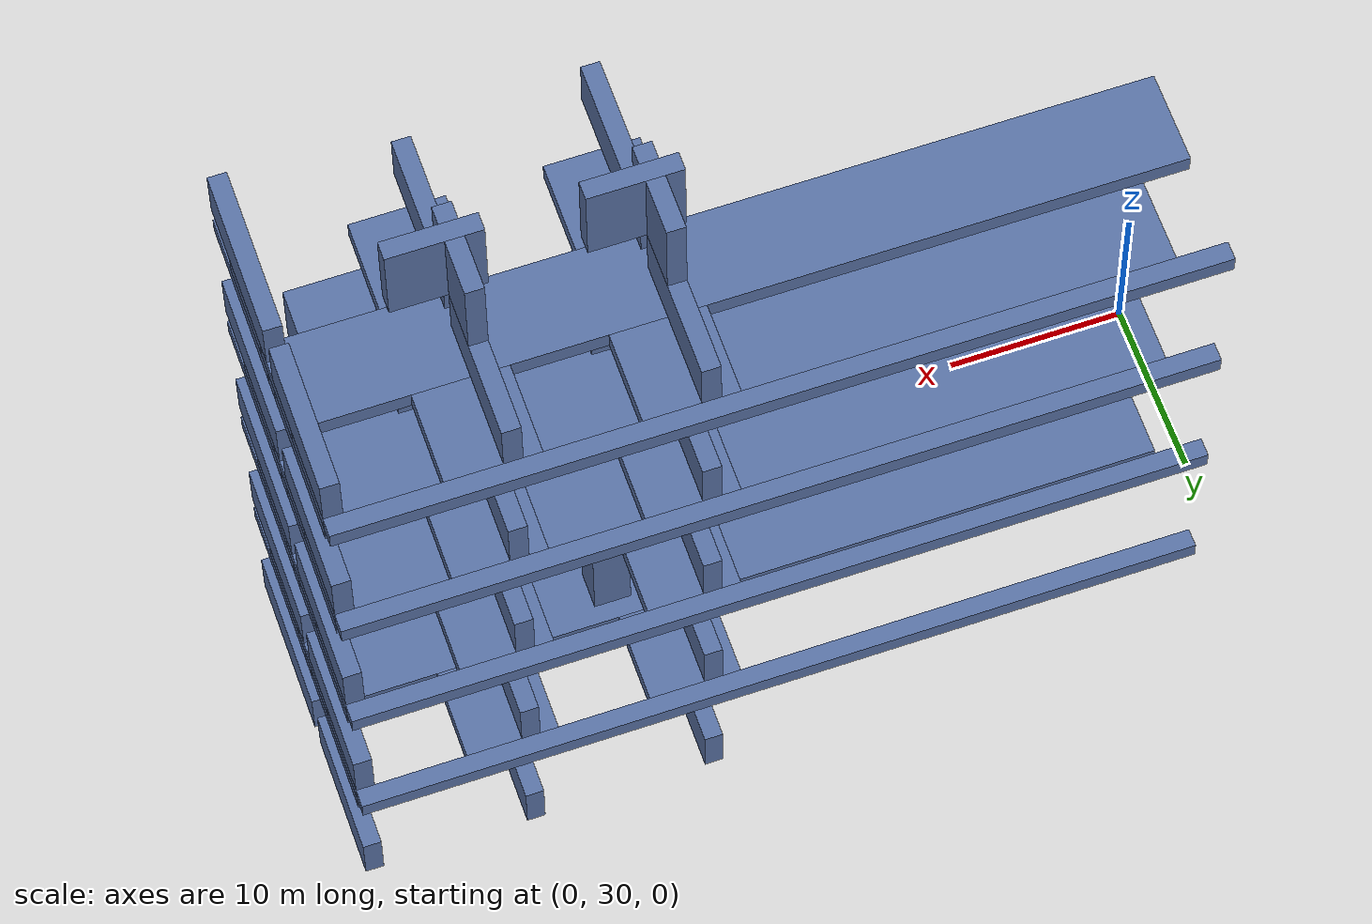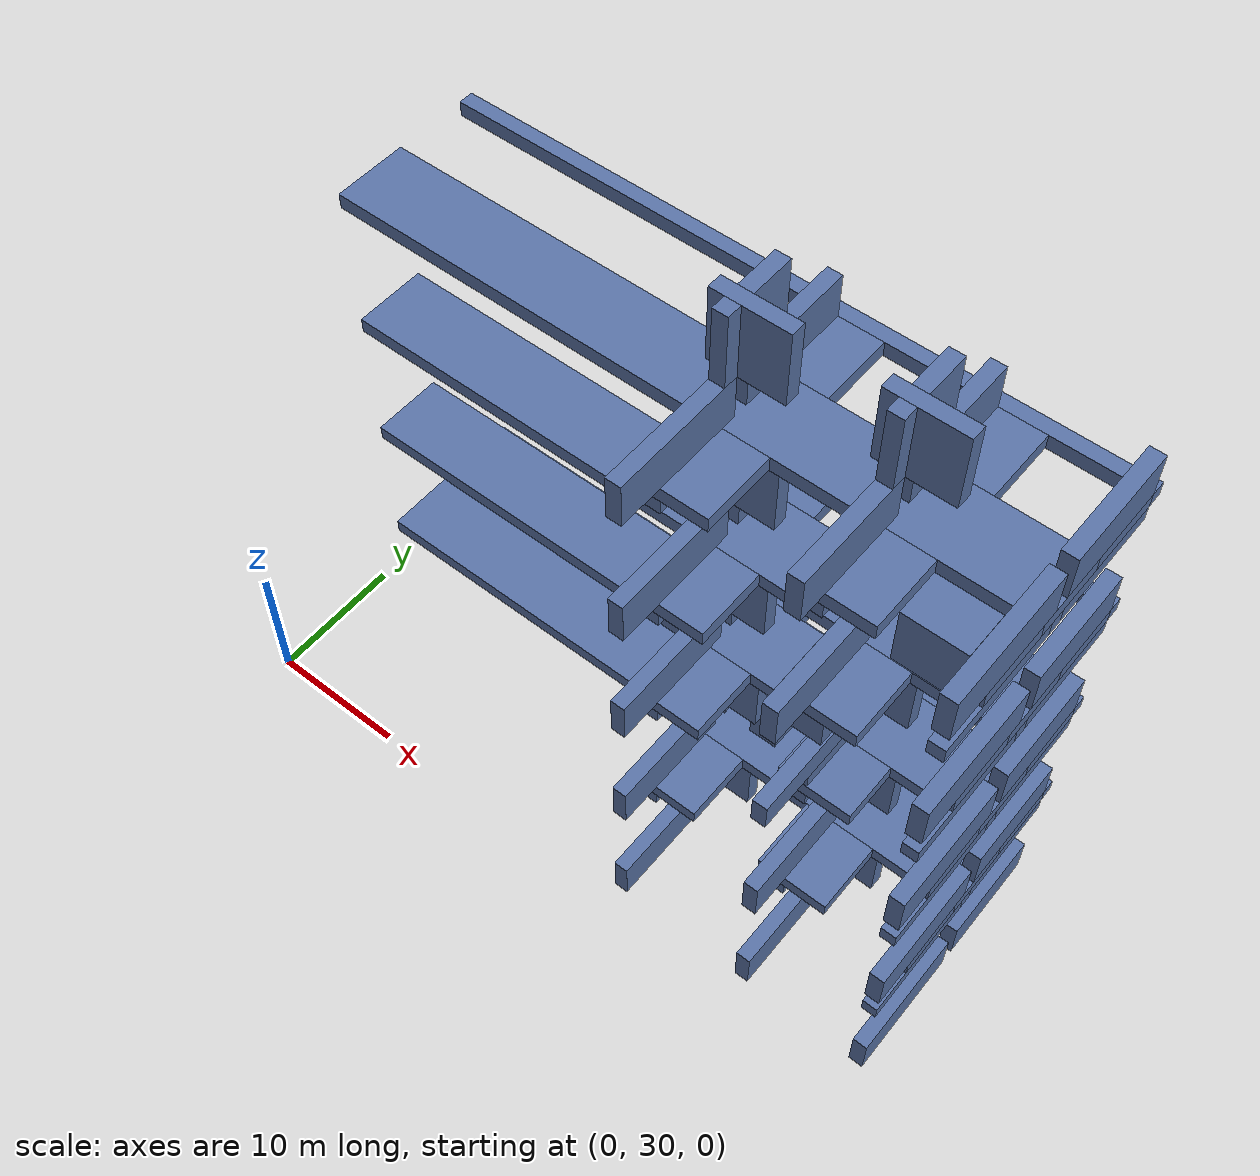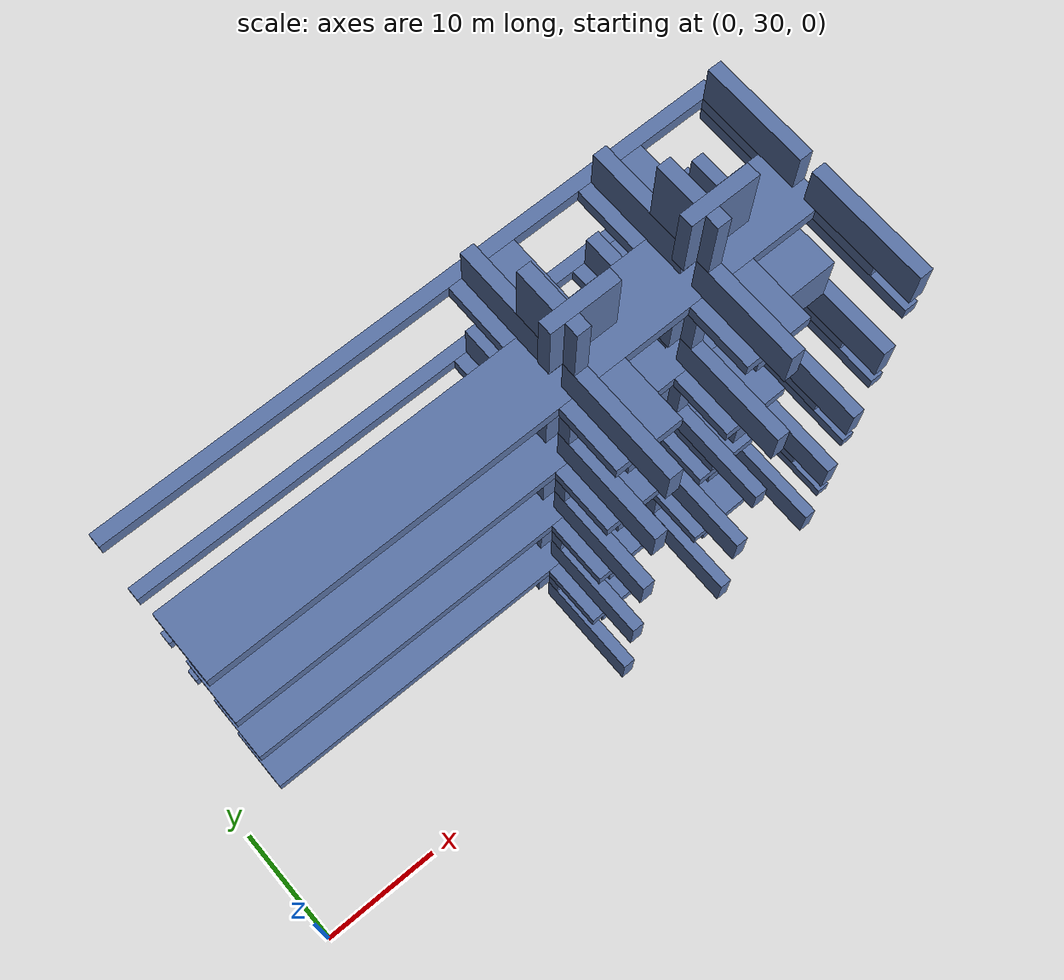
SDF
<sdf version="1.7">
 <world name="default">
  <model name="racer_env">
   <static>1</static>
   <link name="b84">
    <pose>27.000 41.500 10.500 0 0 0</pose>
    <collision name="c"><geometry><box><size>46.000 5.000 1.000</size></box></geometry></collision>
    <visual name="v">
     <geometry><box><size>46.000 5.000 1.000</size></box></geometry>
     <material><ambient>0.30 0.38 0.55 1</ambient><diffuse>0.35 0.45 0.65 1</diffuse></material>
    </visual>
   </link>
   <link name="b85">
    <pose>27.000 41.500 20.500 0 0 0</pose>
    <collision name="c"><geometry><box><size>46.000 5.000 1.000</size></box></geometry></collision>
    <visual name="v">
     <geometry><box><size>46.000 5.000 1.000</size></box></geometry>
     <material><ambient>0.30 0.38 0.55 1</ambient><diffuse>0.35 0.45 0.65 1</diffuse></material>
    </visual>
   </link>
   <link name="b86">
    <pose>27.000 41.500 30.500 0 0 0</pose>
    <collision name="c"><geometry><box><size>46.000 5.000 1.000</size></box></geometry></collision>
    <visual name="v">
     <geometry><box><size>46.000 5.000 1.000</size></box></geometry>
     <material><ambient>0.30 0.38 0.55 1</ambient><diffuse>0.35 0.45 0.65 1</diffuse></material>
    </visual>
   </link>
   <link name="b87">
    <pose>27.000 41.500 40.500 0 0 0</pose>
    <collision name="c"><geometry><box><size>46.000 5.000 1.000</size></box></geometry></collision>
    <visual name="v">
     <geometry><box><size>46.000 5.000 1.000</size></box></geometry>
     <material><ambient>0.30 0.38 0.55 1</ambient><diffuse>0.35 0.45 0.65 1</diffuse></material>
    </visual>
   </link>
   <link name="b88">
    <pose>27.000 40.500 9.500 0 0 0</pose>
    <collision name="c"><geometry><box><size>46.000 1.000 1.000</size></box></geometry></collision>
    <visual name="v">
     <geometry><box><size>46.000 1.000 1.000</size></box></geometry>
     <material><ambient>0.30 0.38 0.55 1</ambient><diffuse>0.35 0.45 0.65 1</diffuse></material>
    </visual>
   </link>
   <link name="b89">
    <pose>27.000 40.500 19.500 0 0 0</pose>
    <collision name="c"><geometry><box><size>46.000 1.000 1.000</size></box></geometry></collision>
    <visual name="v">
     <geometry><box><size>46.000 1.000 1.000</size></box></geometry>
     <material><ambient>0.30 0.38 0.55 1</ambient><diffuse>0.35 0.45 0.65 1</diffuse></material>
    </visual>
   </link>
   <link name="b90">
    <pose>27.000 40.500 29.500 0 0 0</pose>
    <collision name="c"><geometry><box><size>46.000 1.000 1.000</size></box></geometry></collision>
    <visual name="v">
     <geometry><box><size>46.000 1.000 1.000</size></box></geometry>
     <material><ambient>0.30 0.38 0.55 1</ambient><diffuse>0.35 0.45 0.65 1</diffuse></material>
    </visual>
   </link>
   <link name="b91">
    <pose>27.000 40.500 39.500 0 0 0</pose>
    <collision name="c"><geometry><box><size>46.000 1.000 1.000</size></box></geometry></collision>
    <visual name="v">
     <geometry><box><size>46.000 1.000 1.000</size></box></geometry>
     <material><ambient>0.30 0.38 0.55 1</ambient><diffuse>0.35 0.45 0.65 1</diffuse></material>
    </visual>
   </link>
   <link name="b92">
    <pose>27.000 49.500 10.500 0 0 0</pose>
    <collision name="c"><geometry><box><size>46.000 1.000 1.000</size></box></geometry></collision>
    <visual name="v">
     <geometry><box><size>46.000 1.000 1.000</size></box></geometry>
     <material><ambient>0.30 0.38 0.55 1</ambient><diffuse>0.35 0.45 0.65 1</diffuse></material>
    </visual>
   </link>
   <link name="b93">
    <pose>27.000 49.500 20.500 0 0 0</pose>
    <collision name="c"><geometry><box><size>46.000 1.000 1.000</size></box></geometry></collision>
    <visual name="v">
     <geometry><box><size>46.000 1.000 1.000</size></box></geometry>
     <material><ambient>0.30 0.38 0.55 1</ambient><diffuse>0.35 0.45 0.65 1</diffuse></material>
    </visual>
   </link>
   <link name="b94">
    <pose>27.000 49.500 30.500 0 0 0</pose>
    <collision name="c"><geometry><box><size>46.000 1.000 1.000</size></box></geometry></collision>
    <visual name="v">
     <geometry><box><size>46.000 1.000 1.000</size></box></geometry>
     <material><ambient>0.30 0.38 0.55 1</ambient><diffuse>0.35 0.45 0.65 1</diffuse></material>
    </visual>
   </link>
   <link name="b95">
    <pose>27.000 49.500 40.500 0 0 0</pose>
    <collision name="c"><geometry><box><size>46.000 1.000 1.000</size></box></geometry></collision>
    <visual name="v">
     <geometry><box><size>46.000 1.000 1.000</size></box></geometry>
     <material><ambient>0.30 0.38 0.55 1</ambient><diffuse>0.35 0.45 0.65 1</diffuse></material>
    </visual>
   </link>
   <link name="b419">
    <pose>31.500 36.500 10.500 0 0 0</pose>
    <collision name="c"><geometry><box><size>5.000 5.000 1.000</size></box></geometry></collision>
    <visual name="v">
     <geometry><box><size>5.000 5.000 1.000</size></box></geometry>
     <material><ambient>0.30 0.38 0.55 1</ambient><diffuse>0.35 0.45 0.65 1</diffuse></material>
    </visual>
   </link>
   <link name="b420">
    <pose>31.500 36.500 20.500 0 0 0</pose>
    <collision name="c"><geometry><box><size>5.000 5.000 1.000</size></box></geometry></collision>
    <visual name="v">
     <geometry><box><size>5.000 5.000 1.000</size></box></geometry>
     <material><ambient>0.30 0.38 0.55 1</ambient><diffuse>0.35 0.45 0.65 1</diffuse></material>
    </visual>
   </link>
   <link name="b421">
    <pose>31.500 36.500 30.500 0 0 0</pose>
    <collision name="c"><geometry><box><size>5.000 5.000 1.000</size></box></geometry></collision>
    <visual name="v">
     <geometry><box><size>5.000 5.000 1.000</size></box></geometry>
     <material><ambient>0.30 0.38 0.55 1</ambient><diffuse>0.35 0.45 0.65 1</diffuse></material>
    </visual>
   </link>
   <link name="b422">
    <pose>31.500 36.500 40.500 0 0 0</pose>
    <collision name="c"><geometry><box><size>5.000 5.000 1.000</size></box></geometry></collision>
    <visual name="v">
     <geometry><box><size>5.000 5.000 1.000</size></box></geometry>
     <material><ambient>0.30 0.38 0.55 1</ambient><diffuse>0.35 0.45 0.65 1</diffuse></material>
    </visual>
   </link>
   <link name="b423">
    <pose>31.500 40.500 6.500 0 0 0</pose>
    <collision name="c"><geometry><box><size>5.000 1.000 5.000</size></box></geometry></collision>
    <visual name="v">
     <geometry><box><size>5.000 1.000 5.000</size></box></geometry>
     <material><ambient>0.30 0.38 0.55 1</ambient><diffuse>0.35 0.45 0.65 1</diffuse></material>
    </visual>
   </link>
   <link name="b424">
    <pose>31.500 40.500 16.500 0 0 0</pose>
    <collision name="c"><geometry><box><size>5.000 1.000 5.000</size></box></geometry></collision>
    <visual name="v">
     <geometry><box><size>5.000 1.000 5.000</size></box></geometry>
     <material><ambient>0.30 0.38 0.55 1</ambient><diffuse>0.35 0.45 0.65 1</diffuse></material>
    </visual>
   </link>
   <link name="b425">
    <pose>31.500 40.500 26.500 0 0 0</pose>
    <collision name="c"><geometry><box><size>5.000 1.000 5.000</size></box></geometry></collision>
    <visual name="v">
     <geometry><box><size>5.000 1.000 5.000</size></box></geometry>
     <material><ambient>0.30 0.38 0.55 1</ambient><diffuse>0.35 0.45 0.65 1</diffuse></material>
    </visual>
   </link>
   <link name="b426">
    <pose>31.500 40.500 36.500 0 0 0</pose>
    <collision name="c"><geometry><box><size>5.000 1.000 5.000</size></box></geometry></collision>
    <visual name="v">
     <geometry><box><size>5.000 1.000 5.000</size></box></geometry>
     <material><ambient>0.30 0.38 0.55 1</ambient><diffuse>0.35 0.45 0.65 1</diffuse></material>
    </visual>
   </link>
   <link name="b427">
    <pose>31.500 40.500 46.500 0 0 0</pose>
    <collision name="c"><geometry><box><size>5.000 1.000 5.000</size></box></geometry></collision>
    <visual name="v">
     <geometry><box><size>5.000 1.000 5.000</size></box></geometry>
     <material><ambient>0.30 0.38 0.55 1</ambient><diffuse>0.35 0.45 0.65 1</diffuse></material>
    </visual>
   </link>
   <link name="b428">
    <pose>31.500 46.500 10.500 0 0 0</pose>
    <collision name="c"><geometry><box><size>5.000 5.000 1.000</size></box></geometry></collision>
    <visual name="v">
     <geometry><box><size>5.000 5.000 1.000</size></box></geometry>
     <material><ambient>0.30 0.38 0.55 1</ambient><diffuse>0.35 0.45 0.65 1</diffuse></material>
    </visual>
   </link>
   <link name="b429">
    <pose>31.500 46.500 20.500 0 0 0</pose>
    <collision name="c"><geometry><box><size>5.000 5.000 1.000</size></box></geometry></collision>
    <visual name="v">
     <geometry><box><size>5.000 5.000 1.000</size></box></geometry>
     <material><ambient>0.30 0.38 0.55 1</ambient><diffuse>0.35 0.45 0.65 1</diffuse></material>
    </visual>
   </link>
   <link name="b430">
    <pose>31.500 46.500 30.500 0 0 0</pose>
    <collision name="c"><geometry><box><size>5.000 5.000 1.000</size></box></geometry></collision>
    <visual name="v">
     <geometry><box><size>5.000 5.000 1.000</size></box></geometry>
     <material><ambient>0.30 0.38 0.55 1</ambient><diffuse>0.35 0.45 0.65 1</diffuse></material>
    </visual>
   </link>
   <link name="b431">
    <pose>31.500 46.500 40.500 0 0 0</pose>
    <collision name="c"><geometry><box><size>5.000 5.000 1.000</size></box></geometry></collision>
    <visual name="v">
     <geometry><box><size>5.000 5.000 1.000</size></box></geometry>
     <material><ambient>0.30 0.38 0.55 1</ambient><diffuse>0.35 0.45 0.65 1</diffuse></material>
    </visual>
   </link>
   <link name="b492">
    <pose>30.500 35.500 2.500 0 0 0</pose>
    <collision name="c"><geometry><box><size>1.000 9.000 3.000</size></box></geometry></collision>
    <visual name="v">
     <geometry><box><size>1.000 9.000 3.000</size></box></geometry>
     <material><ambient>0.30 0.38 0.55 1</ambient><diffuse>0.35 0.45 0.65 1</diffuse></material>
    </visual>
   </link>
   <link name="b494">
    <pose>30.500 35.500 12.500 0 0 0</pose>
    <collision name="c"><geometry><box><size>1.000 9.000 3.000</size></box></geometry></collision>
    <visual name="v">
     <geometry><box><size>1.000 9.000 3.000</size></box></geometry>
     <material><ambient>0.30 0.38 0.55 1</ambient><diffuse>0.35 0.45 0.65 1</diffuse></material>
    </visual>
   </link>
   <link name="b496">
    <pose>30.500 35.500 22.500 0 0 0</pose>
    <collision name="c"><geometry><box><size>1.000 9.000 3.000</size></box></geometry></collision>
    <visual name="v">
     <geometry><box><size>1.000 9.000 3.000</size></box></geometry>
     <material><ambient>0.30 0.38 0.55 1</ambient><diffuse>0.35 0.45 0.65 1</diffuse></material>
    </visual>
   </link>
   <link name="b498">
    <pose>30.500 35.500 32.500 0 0 0</pose>
    <collision name="c"><geometry><box><size>1.000 9.000 3.000</size></box></geometry></collision>
    <visual name="v">
     <geometry><box><size>1.000 9.000 3.000</size></box></geometry>
     <material><ambient>0.30 0.38 0.55 1</ambient><diffuse>0.35 0.45 0.65 1</diffuse></material>
    </visual>
   </link>
   <link name="b500">
    <pose>30.500 35.500 42.500 0 0 0</pose>
    <collision name="c"><geometry><box><size>1.000 9.000 3.000</size></box></geometry></collision>
    <visual name="v">
     <geometry><box><size>1.000 9.000 3.000</size></box></geometry>
     <material><ambient>0.30 0.38 0.55 1</ambient><diffuse>0.35 0.45 0.65 1</diffuse></material>
    </visual>
   </link>
   <link name="b502">
    <pose>30.500 37.000 9.500 0 0 0</pose>
    <collision name="c"><geometry><box><size>1.000 6.000 1.000</size></box></geometry></collision>
    <visual name="v">
     <geometry><box><size>1.000 6.000 1.000</size></box></geometry>
     <material><ambient>0.30 0.38 0.55 1</ambient><diffuse>0.35 0.45 0.65 1</diffuse></material>
    </visual>
   </link>
   <link name="b503">
    <pose>30.500 37.000 19.500 0 0 0</pose>
    <collision name="c"><geometry><box><size>1.000 6.000 1.000</size></box></geometry></collision>
    <visual name="v">
     <geometry><box><size>1.000 6.000 1.000</size></box></geometry>
     <material><ambient>0.30 0.38 0.55 1</ambient><diffuse>0.35 0.45 0.65 1</diffuse></material>
    </visual>
   </link>
   <link name="b504">
    <pose>30.500 37.000 29.500 0 0 0</pose>
    <collision name="c"><geometry><box><size>1.000 6.000 1.000</size></box></geometry></collision>
    <visual name="v">
     <geometry><box><size>1.000 6.000 1.000</size></box></geometry>
     <material><ambient>0.30 0.38 0.55 1</ambient><diffuse>0.35 0.45 0.65 1</diffuse></material>
    </visual>
   </link>
   <link name="b505">
    <pose>30.500 37.000 39.500 0 0 0</pose>
    <collision name="c"><geometry><box><size>1.000 6.000 1.000</size></box></geometry></collision>
    <visual name="v">
     <geometry><box><size>1.000 6.000 1.000</size></box></geometry>
     <material><ambient>0.30 0.38 0.55 1</ambient><diffuse>0.35 0.45 0.65 1</diffuse></material>
    </visual>
   </link>
   <link name="b506">
    <pose>30.500 39.500 6.500 0 0 0</pose>
    <collision name="c"><geometry><box><size>1.000 1.000 5.000</size></box></geometry></collision>
    <visual name="v">
     <geometry><box><size>1.000 1.000 5.000</size></box></geometry>
     <material><ambient>0.30 0.38 0.55 1</ambient><diffuse>0.35 0.45 0.65 1</diffuse></material>
    </visual>
   </link>
   <link name="b507">
    <pose>30.500 39.500 16.500 0 0 0</pose>
    <collision name="c"><geometry><box><size>1.000 1.000 5.000</size></box></geometry></collision>
    <visual name="v">
     <geometry><box><size>1.000 1.000 5.000</size></box></geometry>
     <material><ambient>0.30 0.38 0.55 1</ambient><diffuse>0.35 0.45 0.65 1</diffuse></material>
    </visual>
   </link>
   <link name="b508">
    <pose>30.500 39.500 26.500 0 0 0</pose>
    <collision name="c"><geometry><box><size>1.000 1.000 5.000</size></box></geometry></collision>
    <visual name="v">
     <geometry><box><size>1.000 1.000 5.000</size></box></geometry>
     <material><ambient>0.30 0.38 0.55 1</ambient><diffuse>0.35 0.45 0.65 1</diffuse></material>
    </visual>
   </link>
   <link name="b509">
    <pose>30.500 39.500 36.500 0 0 0</pose>
    <collision name="c"><geometry><box><size>1.000 1.000 5.000</size></box></geometry></collision>
    <visual name="v">
     <geometry><box><size>1.000 1.000 5.000</size></box></geometry>
     <material><ambient>0.30 0.38 0.55 1</ambient><diffuse>0.35 0.45 0.65 1</diffuse></material>
    </visual>
   </link>
   <link name="b510">
    <pose>30.500 39.500 46.500 0 0 0</pose>
    <collision name="c"><geometry><box><size>1.000 1.000 5.000</size></box></geometry></collision>
    <visual name="v">
     <geometry><box><size>1.000 1.000 5.000</size></box></geometry>
     <material><ambient>0.30 0.38 0.55 1</ambient><diffuse>0.35 0.45 0.65 1</diffuse></material>
    </visual>
   </link>
   <link name="b511">
    <pose>30.500 45.000 2.500 0 0 0</pose>
    <collision name="c"><geometry><box><size>1.000 8.000 3.000</size></box></geometry></collision>
    <visual name="v">
     <geometry><box><size>1.000 8.000 3.000</size></box></geometry>
     <material><ambient>0.30 0.38 0.55 1</ambient><diffuse>0.35 0.45 0.65 1</diffuse></material>
    </visual>
   </link>
   <link name="b512">
    <pose>30.500 42.500 7.000 0 0 0</pose>
    <collision name="c"><geometry><box><size>1.000 3.000 6.000</size></box></geometry></collision>
    <visual name="v">
     <geometry><box><size>1.000 3.000 6.000</size></box></geometry>
     <material><ambient>0.30 0.38 0.55 1</ambient><diffuse>0.35 0.45 0.65 1</diffuse></material>
    </visual>
   </link>
   <link name="b513">
    <pose>30.500 45.000 12.500 0 0 0</pose>
    <collision name="c"><geometry><box><size>1.000 8.000 3.000</size></box></geometry></collision>
    <visual name="v">
     <geometry><box><size>1.000 8.000 3.000</size></box></geometry>
     <material><ambient>0.30 0.38 0.55 1</ambient><diffuse>0.35 0.45 0.65 1</diffuse></material>
    </visual>
   </link>
   <link name="b514">
    <pose>30.500 42.500 17.000 0 0 0</pose>
    <collision name="c"><geometry><box><size>1.000 3.000 6.000</size></box></geometry></collision>
    <visual name="v">
     <geometry><box><size>1.000 3.000 6.000</size></box></geometry>
     <material><ambient>0.30 0.38 0.55 1</ambient><diffuse>0.35 0.45 0.65 1</diffuse></material>
    </visual>
   </link>
   <link name="b515">
    <pose>30.500 45.000 22.500 0 0 0</pose>
    <collision name="c"><geometry><box><size>1.000 8.000 3.000</size></box></geometry></collision>
    <visual name="v">
     <geometry><box><size>1.000 8.000 3.000</size></box></geometry>
     <material><ambient>0.30 0.38 0.55 1</ambient><diffuse>0.35 0.45 0.65 1</diffuse></material>
    </visual>
   </link>
   <link name="b516">
    <pose>30.500 42.500 27.000 0 0 0</pose>
    <collision name="c"><geometry><box><size>1.000 3.000 6.000</size></box></geometry></collision>
    <visual name="v">
     <geometry><box><size>1.000 3.000 6.000</size></box></geometry>
     <material><ambient>0.30 0.38 0.55 1</ambient><diffuse>0.35 0.45 0.65 1</diffuse></material>
    </visual>
   </link>
   <link name="b517">
    <pose>30.500 45.000 32.500 0 0 0</pose>
    <collision name="c"><geometry><box><size>1.000 8.000 3.000</size></box></geometry></collision>
    <visual name="v">
     <geometry><box><size>1.000 8.000 3.000</size></box></geometry>
     <material><ambient>0.30 0.38 0.55 1</ambient><diffuse>0.35 0.45 0.65 1</diffuse></material>
    </visual>
   </link>
   <link name="b518">
    <pose>30.500 42.500 37.000 0 0 0</pose>
    <collision name="c"><geometry><box><size>1.000 3.000 6.000</size></box></geometry></collision>
    <visual name="v">
     <geometry><box><size>1.000 3.000 6.000</size></box></geometry>
     <material><ambient>0.30 0.38 0.55 1</ambient><diffuse>0.35 0.45 0.65 1</diffuse></material>
    </visual>
   </link>
   <link name="b519">
    <pose>30.500 45.000 42.500 0 0 0</pose>
    <collision name="c"><geometry><box><size>1.000 8.000 3.000</size></box></geometry></collision>
    <visual name="v">
     <geometry><box><size>1.000 8.000 3.000</size></box></geometry>
     <material><ambient>0.30 0.38 0.55 1</ambient><diffuse>0.35 0.45 0.65 1</diffuse></material>
    </visual>
   </link>
   <link name="b520">
    <pose>30.500 42.500 46.500 0 0 0</pose>
    <collision name="c"><geometry><box><size>1.000 3.000 5.000</size></box></geometry></collision>
    <visual name="v">
     <geometry><box><size>1.000 3.000 5.000</size></box></geometry>
     <material><ambient>0.30 0.38 0.55 1</ambient><diffuse>0.35 0.45 0.65 1</diffuse></material>
    </visual>
   </link>
   <link name="b521">
    <pose>30.500 46.500 9.500 0 0 0</pose>
    <collision name="c"><geometry><box><size>1.000 5.000 1.000</size></box></geometry></collision>
    <visual name="v">
     <geometry><box><size>1.000 5.000 1.000</size></box></geometry>
     <material><ambient>0.30 0.38 0.55 1</ambient><diffuse>0.35 0.45 0.65 1</diffuse></material>
    </visual>
   </link>
   <link name="b522">
    <pose>30.500 46.500 19.500 0 0 0</pose>
    <collision name="c"><geometry><box><size>1.000 5.000 1.000</size></box></geometry></collision>
    <visual name="v">
     <geometry><box><size>1.000 5.000 1.000</size></box></geometry>
     <material><ambient>0.30 0.38 0.55 1</ambient><diffuse>0.35 0.45 0.65 1</diffuse></material>
    </visual>
   </link>
   <link name="b523">
    <pose>30.500 46.500 29.500 0 0 0</pose>
    <collision name="c"><geometry><box><size>1.000 5.000 1.000</size></box></geometry></collision>
    <visual name="v">
     <geometry><box><size>1.000 5.000 1.000</size></box></geometry>
     <material><ambient>0.30 0.38 0.55 1</ambient><diffuse>0.35 0.45 0.65 1</diffuse></material>
    </visual>
   </link>
   <link name="b524">
    <pose>30.500 46.500 39.500 0 0 0</pose>
    <collision name="c"><geometry><box><size>1.000 5.000 1.000</size></box></geometry></collision>
    <visual name="v">
     <geometry><box><size>1.000 5.000 1.000</size></box></geometry>
     <material><ambient>0.30 0.38 0.55 1</ambient><diffuse>0.35 0.45 0.65 1</diffuse></material>
    </visual>
   </link>
   <link name="b527">
    <pose>34.000 42.000 13.500 0 0 0</pose>
    <collision name="c"><geometry><box><size>2.000 2.000 5.000</size></box></geometry></collision>
    <visual name="v">
     <geometry><box><size>2.000 2.000 5.000</size></box></geometry>
     <material><ambient>0.30 0.38 0.55 1</ambient><diffuse>0.35 0.45 0.65 1</diffuse></material>
    </visual>
   </link>
   <link name="b560">
    <pose>41.500 36.500 10.500 0 0 0</pose>
    <collision name="c"><geometry><box><size>5.000 5.000 1.000</size></box></geometry></collision>
    <visual name="v">
     <geometry><box><size>5.000 5.000 1.000</size></box></geometry>
     <material><ambient>0.30 0.38 0.55 1</ambient><diffuse>0.35 0.45 0.65 1</diffuse></material>
    </visual>
   </link>
   <link name="b561">
    <pose>41.500 36.500 30.500 0 0 0</pose>
    <collision name="c"><geometry><box><size>5.000 5.000 1.000</size></box></geometry></collision>
    <visual name="v">
     <geometry><box><size>5.000 5.000 1.000</size></box></geometry>
     <material><ambient>0.30 0.38 0.55 1</ambient><diffuse>0.35 0.45 0.65 1</diffuse></material>
    </visual>
   </link>
   <link name="b562">
    <pose>41.500 36.500 40.500 0 0 0</pose>
    <collision name="c"><geometry><box><size>5.000 5.000 1.000</size></box></geometry></collision>
    <visual name="v">
     <geometry><box><size>5.000 5.000 1.000</size></box></geometry>
     <material><ambient>0.30 0.38 0.55 1</ambient><diffuse>0.35 0.45 0.65 1</diffuse></material>
    </visual>
   </link>
   <link name="b563">
    <pose>41.500 37.000 20.500 0 0 0</pose>
    <collision name="c"><geometry><box><size>5.000 4.000 1.000</size></box></geometry></collision>
    <visual name="v">
     <geometry><box><size>5.000 4.000 1.000</size></box></geometry>
     <material><ambient>0.30 0.38 0.55 1</ambient><diffuse>0.35 0.45 0.65 1</diffuse></material>
    </visual>
   </link>
   <link name="b564">
    <pose>41.500 40.500 6.500 0 0 0</pose>
    <collision name="c"><geometry><box><size>5.000 1.000 5.000</size></box></geometry></collision>
    <visual name="v">
     <geometry><box><size>5.000 1.000 5.000</size></box></geometry>
     <material><ambient>0.30 0.38 0.55 1</ambient><diffuse>0.35 0.45 0.65 1</diffuse></material>
    </visual>
   </link>
   <link name="b565">
    <pose>41.500 40.500 16.500 0 0 0</pose>
    <collision name="c"><geometry><box><size>5.000 1.000 5.000</size></box></geometry></collision>
    <visual name="v">
     <geometry><box><size>5.000 1.000 5.000</size></box></geometry>
     <material><ambient>0.30 0.38 0.55 1</ambient><diffuse>0.35 0.45 0.65 1</diffuse></material>
    </visual>
   </link>
   <link name="b566">
    <pose>41.500 40.500 26.500 0 0 0</pose>
    <collision name="c"><geometry><box><size>5.000 1.000 5.000</size></box></geometry></collision>
    <visual name="v">
     <geometry><box><size>5.000 1.000 5.000</size></box></geometry>
     <material><ambient>0.30 0.38 0.55 1</ambient><diffuse>0.35 0.45 0.65 1</diffuse></material>
    </visual>
   </link>
   <link name="b567">
    <pose>41.500 40.500 36.500 0 0 0</pose>
    <collision name="c"><geometry><box><size>5.000 1.000 5.000</size></box></geometry></collision>
    <visual name="v">
     <geometry><box><size>5.000 1.000 5.000</size></box></geometry>
     <material><ambient>0.30 0.38 0.55 1</ambient><diffuse>0.35 0.45 0.65 1</diffuse></material>
    </visual>
   </link>
   <link name="b568">
    <pose>41.500 40.500 46.500 0 0 0</pose>
    <collision name="c"><geometry><box><size>5.000 1.000 5.000</size></box></geometry></collision>
    <visual name="v">
     <geometry><box><size>5.000 1.000 5.000</size></box></geometry>
     <material><ambient>0.30 0.38 0.55 1</ambient><diffuse>0.35 0.45 0.65 1</diffuse></material>
    </visual>
   </link>
   <link name="b569">
    <pose>41.500 46.500 10.500 0 0 0</pose>
    <collision name="c"><geometry><box><size>5.000 5.000 1.000</size></box></geometry></collision>
    <visual name="v">
     <geometry><box><size>5.000 5.000 1.000</size></box></geometry>
     <material><ambient>0.30 0.38 0.55 1</ambient><diffuse>0.35 0.45 0.65 1</diffuse></material>
    </visual>
   </link>
   <link name="b570">
    <pose>41.500 46.500 20.500 0 0 0</pose>
    <collision name="c"><geometry><box><size>5.000 5.000 1.000</size></box></geometry></collision>
    <visual name="v">
     <geometry><box><size>5.000 5.000 1.000</size></box></geometry>
     <material><ambient>0.30 0.38 0.55 1</ambient><diffuse>0.35 0.45 0.65 1</diffuse></material>
    </visual>
   </link>
   <link name="b571">
    <pose>41.500 46.500 30.500 0 0 0</pose>
    <collision name="c"><geometry><box><size>5.000 5.000 1.000</size></box></geometry></collision>
    <visual name="v">
     <geometry><box><size>5.000 5.000 1.000</size></box></geometry>
     <material><ambient>0.30 0.38 0.55 1</ambient><diffuse>0.35 0.45 0.65 1</diffuse></material>
    </visual>
   </link>
   <link name="b572">
    <pose>41.500 46.500 40.500 0 0 0</pose>
    <collision name="c"><geometry><box><size>5.000 5.000 1.000</size></box></geometry></collision>
    <visual name="v">
     <geometry><box><size>5.000 5.000 1.000</size></box></geometry>
     <material><ambient>0.30 0.38 0.55 1</ambient><diffuse>0.35 0.45 0.65 1</diffuse></material>
    </visual>
   </link>
   <link name="b629">
    <pose>40.500 35.500 2.500 0 0 0</pose>
    <collision name="c"><geometry><box><size>1.000 9.000 3.000</size></box></geometry></collision>
    <visual name="v">
     <geometry><box><size>1.000 9.000 3.000</size></box></geometry>
     <material><ambient>0.30 0.38 0.55 1</ambient><diffuse>0.35 0.45 0.65 1</diffuse></material>
    </visual>
   </link>
   <link name="b631">
    <pose>40.500 35.500 12.500 0 0 0</pose>
    <collision name="c"><geometry><box><size>1.000 9.000 3.000</size></box></geometry></collision>
    <visual name="v">
     <geometry><box><size>1.000 9.000 3.000</size></box></geometry>
     <material><ambient>0.30 0.38 0.55 1</ambient><diffuse>0.35 0.45 0.65 1</diffuse></material>
    </visual>
   </link>
   <link name="b633">
    <pose>40.500 35.500 23.000 0 0 0</pose>
    <collision name="c"><geometry><box><size>1.000 9.000 2.000</size></box></geometry></collision>
    <visual name="v">
     <geometry><box><size>1.000 9.000 2.000</size></box></geometry>
     <material><ambient>0.30 0.38 0.55 1</ambient><diffuse>0.35 0.45 0.65 1</diffuse></material>
    </visual>
   </link>
   <link name="b635">
    <pose>40.500 35.500 32.500 0 0 0</pose>
    <collision name="c"><geometry><box><size>1.000 9.000 3.000</size></box></geometry></collision>
    <visual name="v">
     <geometry><box><size>1.000 9.000 3.000</size></box></geometry>
     <material><ambient>0.30 0.38 0.55 1</ambient><diffuse>0.35 0.45 0.65 1</diffuse></material>
    </visual>
   </link>
   <link name="b639">
    <pose>40.500 36.000 42.500 0 0 0</pose>
    <collision name="c"><geometry><box><size>1.000 8.000 3.000</size></box></geometry></collision>
    <visual name="v">
     <geometry><box><size>1.000 8.000 3.000</size></box></geometry>
     <material><ambient>0.30 0.38 0.55 1</ambient><diffuse>0.35 0.45 0.65 1</diffuse></material>
    </visual>
   </link>
   <link name="b640">
    <pose>40.500 37.000 9.500 0 0 0</pose>
    <collision name="c"><geometry><box><size>1.000 6.000 1.000</size></box></geometry></collision>
    <visual name="v">
     <geometry><box><size>1.000 6.000 1.000</size></box></geometry>
     <material><ambient>0.30 0.38 0.55 1</ambient><diffuse>0.35 0.45 0.65 1</diffuse></material>
    </visual>
   </link>
   <link name="b641">
    <pose>41.000 35.000 29.000 0 0 0</pose>
    <collision name="c"><geometry><box><size>2.000 2.000 2.000</size></box></geometry></collision>
    <visual name="v">
     <geometry><box><size>2.000 2.000 2.000</size></box></geometry>
     <material><ambient>0.30 0.38 0.55 1</ambient><diffuse>0.35 0.45 0.65 1</diffuse></material>
    </visual>
   </link>
   <link name="b642">
    <pose>40.500 37.000 39.500 0 0 0</pose>
    <collision name="c"><geometry><box><size>1.000 6.000 1.000</size></box></geometry></collision>
    <visual name="v">
     <geometry><box><size>1.000 6.000 1.000</size></box></geometry>
     <material><ambient>0.30 0.38 0.55 1</ambient><diffuse>0.35 0.45 0.65 1</diffuse></material>
    </visual>
   </link>
   <link name="b643">
    <pose>40.500 37.500 19.500 0 0 0</pose>
    <collision name="c"><geometry><box><size>1.000 5.000 1.000</size></box></geometry></collision>
    <visual name="v">
     <geometry><box><size>1.000 5.000 1.000</size></box></geometry>
     <material><ambient>0.30 0.38 0.55 1</ambient><diffuse>0.35 0.45 0.65 1</diffuse></material>
    </visual>
   </link>
   <link name="b644">
    <pose>40.500 37.500 21.500 0 0 0</pose>
    <collision name="c"><geometry><box><size>1.000 5.000 1.000</size></box></geometry></collision>
    <visual name="v">
     <geometry><box><size>1.000 5.000 1.000</size></box></geometry>
     <material><ambient>0.30 0.38 0.55 1</ambient><diffuse>0.35 0.45 0.65 1</diffuse></material>
    </visual>
   </link>
   <link name="b645">
    <pose>40.500 38.000 29.500 0 0 0</pose>
    <collision name="c"><geometry><box><size>1.000 4.000 1.000</size></box></geometry></collision>
    <visual name="v">
     <geometry><box><size>1.000 4.000 1.000</size></box></geometry>
     <material><ambient>0.30 0.38 0.55 1</ambient><diffuse>0.35 0.45 0.65 1</diffuse></material>
    </visual>
   </link>
   <link name="b646">
    <pose>40.500 39.500 6.500 0 0 0</pose>
    <collision name="c"><geometry><box><size>1.000 1.000 5.000</size></box></geometry></collision>
    <visual name="v">
     <geometry><box><size>1.000 1.000 5.000</size></box></geometry>
     <material><ambient>0.30 0.38 0.55 1</ambient><diffuse>0.35 0.45 0.65 1</diffuse></material>
    </visual>
   </link>
   <link name="b647">
    <pose>40.500 39.500 16.500 0 0 0</pose>
    <collision name="c"><geometry><box><size>1.000 1.000 5.000</size></box></geometry></collision>
    <visual name="v">
     <geometry><box><size>1.000 1.000 5.000</size></box></geometry>
     <material><ambient>0.30 0.38 0.55 1</ambient><diffuse>0.35 0.45 0.65 1</diffuse></material>
    </visual>
   </link>
   <link name="b648">
    <pose>40.500 39.500 26.500 0 0 0</pose>
    <collision name="c"><geometry><box><size>1.000 1.000 5.000</size></box></geometry></collision>
    <visual name="v">
     <geometry><box><size>1.000 1.000 5.000</size></box></geometry>
     <material><ambient>0.30 0.38 0.55 1</ambient><diffuse>0.35 0.45 0.65 1</diffuse></material>
    </visual>
   </link>
   <link name="b649">
    <pose>40.500 39.500 36.500 0 0 0</pose>
    <collision name="c"><geometry><box><size>1.000 1.000 5.000</size></box></geometry></collision>
    <visual name="v">
     <geometry><box><size>1.000 1.000 5.000</size></box></geometry>
     <material><ambient>0.30 0.38 0.55 1</ambient><diffuse>0.35 0.45 0.65 1</diffuse></material>
    </visual>
   </link>
   <link name="b650">
    <pose>40.500 39.500 46.500 0 0 0</pose>
    <collision name="c"><geometry><box><size>1.000 1.000 5.000</size></box></geometry></collision>
    <visual name="v">
     <geometry><box><size>1.000 1.000 5.000</size></box></geometry>
     <material><ambient>0.30 0.38 0.55 1</ambient><diffuse>0.35 0.45 0.65 1</diffuse></material>
    </visual>
   </link>
   <link name="b651">
    <pose>40.500 45.000 2.500 0 0 0</pose>
    <collision name="c"><geometry><box><size>1.000 8.000 3.000</size></box></geometry></collision>
    <visual name="v">
     <geometry><box><size>1.000 8.000 3.000</size></box></geometry>
     <material><ambient>0.30 0.38 0.55 1</ambient><diffuse>0.35 0.45 0.65 1</diffuse></material>
    </visual>
   </link>
   <link name="b652">
    <pose>40.500 42.500 7.000 0 0 0</pose>
    <collision name="c"><geometry><box><size>1.000 3.000 6.000</size></box></geometry></collision>
    <visual name="v">
     <geometry><box><size>1.000 3.000 6.000</size></box></geometry>
     <material><ambient>0.30 0.38 0.55 1</ambient><diffuse>0.35 0.45 0.65 1</diffuse></material>
    </visual>
   </link>
   <link name="b653">
    <pose>40.500 45.000 12.500 0 0 0</pose>
    <collision name="c"><geometry><box><size>1.000 8.000 3.000</size></box></geometry></collision>
    <visual name="v">
     <geometry><box><size>1.000 8.000 3.000</size></box></geometry>
     <material><ambient>0.30 0.38 0.55 1</ambient><diffuse>0.35 0.45 0.65 1</diffuse></material>
    </visual>
   </link>
   <link name="b654">
    <pose>40.500 42.500 17.000 0 0 0</pose>
    <collision name="c"><geometry><box><size>1.000 3.000 6.000</size></box></geometry></collision>
    <visual name="v">
     <geometry><box><size>1.000 3.000 6.000</size></box></geometry>
     <material><ambient>0.30 0.38 0.55 1</ambient><diffuse>0.35 0.45 0.65 1</diffuse></material>
    </visual>
   </link>
   <link name="b655">
    <pose>40.500 45.000 22.500 0 0 0</pose>
    <collision name="c"><geometry><box><size>1.000 8.000 3.000</size></box></geometry></collision>
    <visual name="v">
     <geometry><box><size>1.000 8.000 3.000</size></box></geometry>
     <material><ambient>0.30 0.38 0.55 1</ambient><diffuse>0.35 0.45 0.65 1</diffuse></material>
    </visual>
   </link>
   <link name="b656">
    <pose>40.500 42.500 27.000 0 0 0</pose>
    <collision name="c"><geometry><box><size>1.000 3.000 6.000</size></box></geometry></collision>
    <visual name="v">
     <geometry><box><size>1.000 3.000 6.000</size></box></geometry>
     <material><ambient>0.30 0.38 0.55 1</ambient><diffuse>0.35 0.45 0.65 1</diffuse></material>
    </visual>
   </link>
   <link name="b657">
    <pose>40.500 45.000 32.500 0 0 0</pose>
    <collision name="c"><geometry><box><size>1.000 8.000 3.000</size></box></geometry></collision>
    <visual name="v">
     <geometry><box><size>1.000 8.000 3.000</size></box></geometry>
     <material><ambient>0.30 0.38 0.55 1</ambient><diffuse>0.35 0.45 0.65 1</diffuse></material>
    </visual>
   </link>
   <link name="b658">
    <pose>40.500 42.500 37.000 0 0 0</pose>
    <collision name="c"><geometry><box><size>1.000 3.000 6.000</size></box></geometry></collision>
    <visual name="v">
     <geometry><box><size>1.000 3.000 6.000</size></box></geometry>
     <material><ambient>0.30 0.38 0.55 1</ambient><diffuse>0.35 0.45 0.65 1</diffuse></material>
    </visual>
   </link>
   <link name="b659">
    <pose>40.500 45.000 42.500 0 0 0</pose>
    <collision name="c"><geometry><box><size>1.000 8.000 3.000</size></box></geometry></collision>
    <visual name="v">
     <geometry><box><size>1.000 8.000 3.000</size></box></geometry>
     <material><ambient>0.30 0.38 0.55 1</ambient><diffuse>0.35 0.45 0.65 1</diffuse></material>
    </visual>
   </link>
   <link name="b660">
    <pose>40.500 42.500 46.500 0 0 0</pose>
    <collision name="c"><geometry><box><size>1.000 3.000 5.000</size></box></geometry></collision>
    <visual name="v">
     <geometry><box><size>1.000 3.000 5.000</size></box></geometry>
     <material><ambient>0.30 0.38 0.55 1</ambient><diffuse>0.35 0.45 0.65 1</diffuse></material>
    </visual>
   </link>
   <link name="b661">
    <pose>40.500 46.500 9.500 0 0 0</pose>
    <collision name="c"><geometry><box><size>1.000 5.000 1.000</size></box></geometry></collision>
    <visual name="v">
     <geometry><box><size>1.000 5.000 1.000</size></box></geometry>
     <material><ambient>0.30 0.38 0.55 1</ambient><diffuse>0.35 0.45 0.65 1</diffuse></material>
    </visual>
   </link>
   <link name="b662">
    <pose>40.500 46.500 19.500 0 0 0</pose>
    <collision name="c"><geometry><box><size>1.000 5.000 1.000</size></box></geometry></collision>
    <visual name="v">
     <geometry><box><size>1.000 5.000 1.000</size></box></geometry>
     <material><ambient>0.30 0.38 0.55 1</ambient><diffuse>0.35 0.45 0.65 1</diffuse></material>
    </visual>
   </link>
   <link name="b663">
    <pose>40.500 46.500 29.500 0 0 0</pose>
    <collision name="c"><geometry><box><size>1.000 5.000 1.000</size></box></geometry></collision>
    <visual name="v">
     <geometry><box><size>1.000 5.000 1.000</size></box></geometry>
     <material><ambient>0.30 0.38 0.55 1</ambient><diffuse>0.35 0.45 0.65 1</diffuse></material>
    </visual>
   </link>
   <link name="b664">
    <pose>40.500 46.500 39.500 0 0 0</pose>
    <collision name="c"><geometry><box><size>1.000 5.000 1.000</size></box></geometry></collision>
    <visual name="v">
     <geometry><box><size>1.000 5.000 1.000</size></box></geometry>
     <material><ambient>0.30 0.38 0.55 1</ambient><diffuse>0.35 0.45 0.65 1</diffuse></material>
    </visual>
   </link>
   <link name="b675">
    <pose>46.000 38.000 38.000 0 0 0</pose>
    <collision name="c"><geometry><box><size>4.000 4.000 4.000</size></box></geometry></collision>
    <visual name="v">
     <geometry><box><size>4.000 4.000 4.000</size></box></geometry>
     <material><ambient>0.30 0.38 0.55 1</ambient><diffuse>0.35 0.45 0.65 1</diffuse></material>
    </visual>
   </link>
   <link name="b716">
    <pose>49.500 35.500 2.500 0 0 0</pose>
    <collision name="c"><geometry><box><size>1.000 9.000 3.000</size></box></geometry></collision>
    <visual name="v">
     <geometry><box><size>1.000 9.000 3.000</size></box></geometry>
     <material><ambient>0.30 0.38 0.55 1</ambient><diffuse>0.35 0.45 0.65 1</diffuse></material>
    </visual>
   </link>
   <link name="b717">
    <pose>49.500 35.500 9.500 0 0 0</pose>
    <collision name="c"><geometry><box><size>1.000 9.000 1.000</size></box></geometry></collision>
    <visual name="v">
     <geometry><box><size>1.000 9.000 1.000</size></box></geometry>
     <material><ambient>0.30 0.38 0.55 1</ambient><diffuse>0.35 0.45 0.65 1</diffuse></material>
    </visual>
   </link>
   <link name="b718">
    <pose>49.500 35.500 12.500 0 0 0</pose>
    <collision name="c"><geometry><box><size>1.000 9.000 3.000</size></box></geometry></collision>
    <visual name="v">
     <geometry><box><size>1.000 9.000 3.000</size></box></geometry>
     <material><ambient>0.30 0.38 0.55 1</ambient><diffuse>0.35 0.45 0.65 1</diffuse></material>
    </visual>
   </link>
   <link name="b719">
    <pose>49.500 35.500 19.500 0 0 0</pose>
    <collision name="c"><geometry><box><size>1.000 9.000 1.000</size></box></geometry></collision>
    <visual name="v">
     <geometry><box><size>1.000 9.000 1.000</size></box></geometry>
     <material><ambient>0.30 0.38 0.55 1</ambient><diffuse>0.35 0.45 0.65 1</diffuse></material>
    </visual>
   </link>
   <link name="b720">
    <pose>49.500 35.500 22.500 0 0 0</pose>
    <collision name="c"><geometry><box><size>1.000 9.000 3.000</size></box></geometry></collision>
    <visual name="v">
     <geometry><box><size>1.000 9.000 3.000</size></box></geometry>
     <material><ambient>0.30 0.38 0.55 1</ambient><diffuse>0.35 0.45 0.65 1</diffuse></material>
    </visual>
   </link>
   <link name="b721">
    <pose>49.500 35.500 29.500 0 0 0</pose>
    <collision name="c"><geometry><box><size>1.000 9.000 1.000</size></box></geometry></collision>
    <visual name="v">
     <geometry><box><size>1.000 9.000 1.000</size></box></geometry>
     <material><ambient>0.30 0.38 0.55 1</ambient><diffuse>0.35 0.45 0.65 1</diffuse></material>
    </visual>
   </link>
   <link name="b722">
    <pose>49.500 35.500 32.500 0 0 0</pose>
    <collision name="c"><geometry><box><size>1.000 9.000 3.000</size></box></geometry></collision>
    <visual name="v">
     <geometry><box><size>1.000 9.000 3.000</size></box></geometry>
     <material><ambient>0.30 0.38 0.55 1</ambient><diffuse>0.35 0.45 0.65 1</diffuse></material>
    </visual>
   </link>
   <link name="b723">
    <pose>49.500 35.500 39.500 0 0 0</pose>
    <collision name="c"><geometry><box><size>1.000 9.000 1.000</size></box></geometry></collision>
    <visual name="v">
     <geometry><box><size>1.000 9.000 1.000</size></box></geometry>
     <material><ambient>0.30 0.38 0.55 1</ambient><diffuse>0.35 0.45 0.65 1</diffuse></material>
    </visual>
   </link>
   <link name="b724">
    <pose>49.500 35.500 42.500 0 0 0</pose>
    <collision name="c"><geometry><box><size>1.000 9.000 3.000</size></box></geometry></collision>
    <visual name="v">
     <geometry><box><size>1.000 9.000 3.000</size></box></geometry>
     <material><ambient>0.30 0.38 0.55 1</ambient><diffuse>0.35 0.45 0.65 1</diffuse></material>
    </visual>
   </link>
   <link name="b725">
    <pose>49.500 36.500 10.500 0 0 0</pose>
    <collision name="c"><geometry><box><size>1.000 5.000 1.000</size></box></geometry></collision>
    <visual name="v">
     <geometry><box><size>1.000 5.000 1.000</size></box></geometry>
     <material><ambient>0.30 0.38 0.55 1</ambient><diffuse>0.35 0.45 0.65 1</diffuse></material>
    </visual>
   </link>
   <link name="b726">
    <pose>49.500 36.500 20.500 0 0 0</pose>
    <collision name="c"><geometry><box><size>1.000 5.000 1.000</size></box></geometry></collision>
    <visual name="v">
     <geometry><box><size>1.000 5.000 1.000</size></box></geometry>
     <material><ambient>0.30 0.38 0.55 1</ambient><diffuse>0.35 0.45 0.65 1</diffuse></material>
    </visual>
   </link>
   <link name="b727">
    <pose>49.500 36.500 30.500 0 0 0</pose>
    <collision name="c"><geometry><box><size>1.000 5.000 1.000</size></box></geometry></collision>
    <visual name="v">
     <geometry><box><size>1.000 5.000 1.000</size></box></geometry>
     <material><ambient>0.30 0.38 0.55 1</ambient><diffuse>0.35 0.45 0.65 1</diffuse></material>
    </visual>
   </link>
   <link name="b728">
    <pose>49.500 36.500 40.500 0 0 0</pose>
    <collision name="c"><geometry><box><size>1.000 5.000 1.000</size></box></geometry></collision>
    <visual name="v">
     <geometry><box><size>1.000 5.000 1.000</size></box></geometry>
     <material><ambient>0.30 0.38 0.55 1</ambient><diffuse>0.35 0.45 0.65 1</diffuse></material>
    </visual>
   </link>
   <link name="b729">
    <pose>49.500 45.000 2.500 0 0 0</pose>
    <collision name="c"><geometry><box><size>1.000 8.000 3.000</size></box></geometry></collision>
    <visual name="v">
     <geometry><box><size>1.000 8.000 3.000</size></box></geometry>
     <material><ambient>0.30 0.38 0.55 1</ambient><diffuse>0.35 0.45 0.65 1</diffuse></material>
    </visual>
   </link>
   <link name="b730">
    <pose>49.500 45.000 9.500 0 0 0</pose>
    <collision name="c"><geometry><box><size>1.000 8.000 1.000</size></box></geometry></collision>
    <visual name="v">
     <geometry><box><size>1.000 8.000 1.000</size></box></geometry>
     <material><ambient>0.30 0.38 0.55 1</ambient><diffuse>0.35 0.45 0.65 1</diffuse></material>
    </visual>
   </link>
   <link name="b731">
    <pose>49.500 45.000 12.500 0 0 0</pose>
    <collision name="c"><geometry><box><size>1.000 8.000 3.000</size></box></geometry></collision>
    <visual name="v">
     <geometry><box><size>1.000 8.000 3.000</size></box></geometry>
     <material><ambient>0.30 0.38 0.55 1</ambient><diffuse>0.35 0.45 0.65 1</diffuse></material>
    </visual>
   </link>
   <link name="b732">
    <pose>49.500 45.000 19.500 0 0 0</pose>
    <collision name="c"><geometry><box><size>1.000 8.000 1.000</size></box></geometry></collision>
    <visual name="v">
     <geometry><box><size>1.000 8.000 1.000</size></box></geometry>
     <material><ambient>0.30 0.38 0.55 1</ambient><diffuse>0.35 0.45 0.65 1</diffuse></material>
    </visual>
   </link>
   <link name="b733">
    <pose>49.500 45.000 22.500 0 0 0</pose>
    <collision name="c"><geometry><box><size>1.000 8.000 3.000</size></box></geometry></collision>
    <visual name="v">
     <geometry><box><size>1.000 8.000 3.000</size></box></geometry>
     <material><ambient>0.30 0.38 0.55 1</ambient><diffuse>0.35 0.45 0.65 1</diffuse></material>
    </visual>
   </link>
   <link name="b734">
    <pose>49.500 45.000 29.500 0 0 0</pose>
    <collision name="c"><geometry><box><size>1.000 8.000 1.000</size></box></geometry></collision>
    <visual name="v">
     <geometry><box><size>1.000 8.000 1.000</size></box></geometry>
     <material><ambient>0.30 0.38 0.55 1</ambient><diffuse>0.35 0.45 0.65 1</diffuse></material>
    </visual>
   </link>
   <link name="b735">
    <pose>49.500 45.000 32.500 0 0 0</pose>
    <collision name="c"><geometry><box><size>1.000 8.000 3.000</size></box></geometry></collision>
    <visual name="v">
     <geometry><box><size>1.000 8.000 3.000</size></box></geometry>
     <material><ambient>0.30 0.38 0.55 1</ambient><diffuse>0.35 0.45 0.65 1</diffuse></material>
    </visual>
   </link>
   <link name="b736">
    <pose>49.500 45.000 39.500 0 0 0</pose>
    <collision name="c"><geometry><box><size>1.000 8.000 1.000</size></box></geometry></collision>
    <visual name="v">
     <geometry><box><size>1.000 8.000 1.000</size></box></geometry>
     <material><ambient>0.30 0.38 0.55 1</ambient><diffuse>0.35 0.45 0.65 1</diffuse></material>
    </visual>
   </link>
   <link name="b737">
    <pose>49.500 45.000 42.500 0 0 0</pose>
    <collision name="c"><geometry><box><size>1.000 8.000 3.000</size></box></geometry></collision>
    <visual name="v">
     <geometry><box><size>1.000 8.000 3.000</size></box></geometry>
     <material><ambient>0.30 0.38 0.55 1</ambient><diffuse>0.35 0.45 0.65 1</diffuse></material>
    </visual>
   </link>
   <link name="b738">
    <pose>49.500 46.500 10.500 0 0 0</pose>
    <collision name="c"><geometry><box><size>1.000 5.000 1.000</size></box></geometry></collision>
    <visual name="v">
     <geometry><box><size>1.000 5.000 1.000</size></box></geometry>
     <material><ambient>0.30 0.38 0.55 1</ambient><diffuse>0.35 0.45 0.65 1</diffuse></material>
    </visual>
   </link>
   <link name="b739">
    <pose>49.500 46.500 20.500 0 0 0</pose>
    <collision name="c"><geometry><box><size>1.000 5.000 1.000</size></box></geometry></collision>
    <visual name="v">
     <geometry><box><size>1.000 5.000 1.000</size></box></geometry>
     <material><ambient>0.30 0.38 0.55 1</ambient><diffuse>0.35 0.45 0.65 1</diffuse></material>
    </visual>
   </link>
   <link name="b740">
    <pose>49.500 46.500 30.500 0 0 0</pose>
    <collision name="c"><geometry><box><size>1.000 5.000 1.000</size></box></geometry></collision>
    <visual name="v">
     <geometry><box><size>1.000 5.000 1.000</size></box></geometry>
     <material><ambient>0.30 0.38 0.55 1</ambient><diffuse>0.35 0.45 0.65 1</diffuse></material>
    </visual>
   </link>
   <link name="b741">
    <pose>49.500 46.500 40.500 0 0 0</pose>
    <collision name="c"><geometry><box><size>1.000 5.000 1.000</size></box></geometry></collision>
    <visual name="v">
     <geometry><box><size>1.000 5.000 1.000</size></box></geometry>
     <material><ambient>0.30 0.38 0.55 1</ambient><diffuse>0.35 0.45 0.65 1</diffuse></material>
    </visual>
   </link>
  </model>
 </world>
</sdf>
